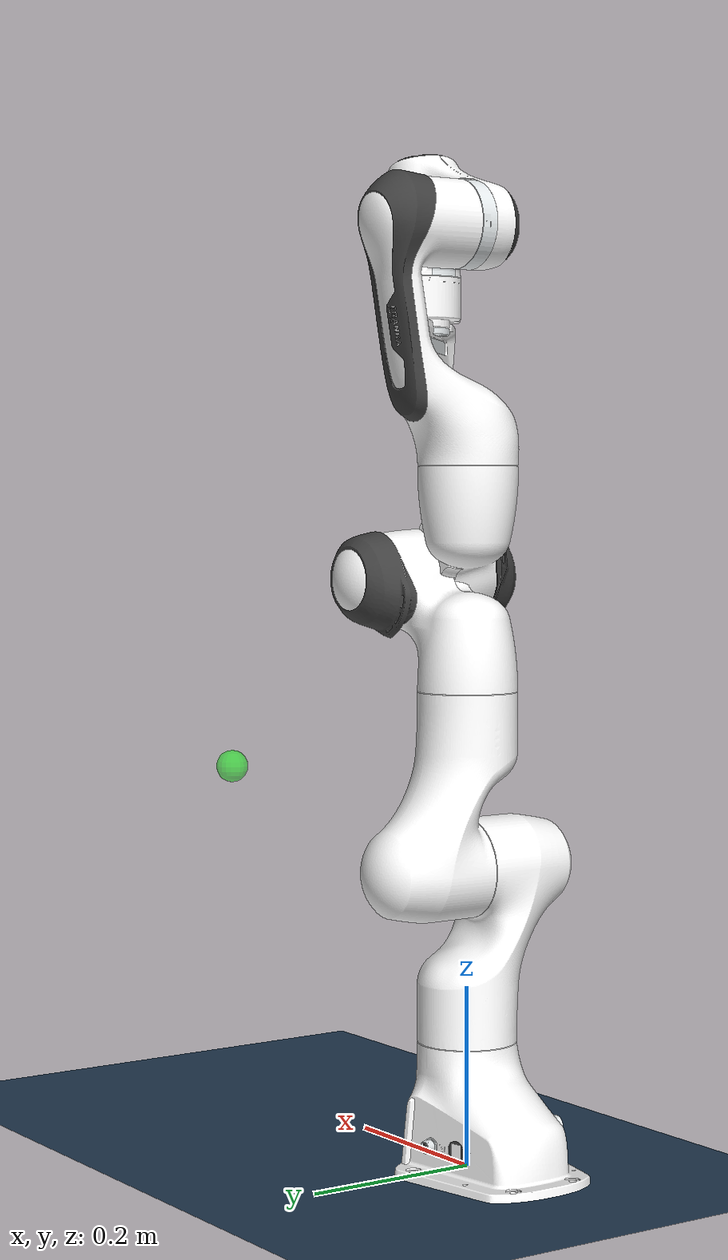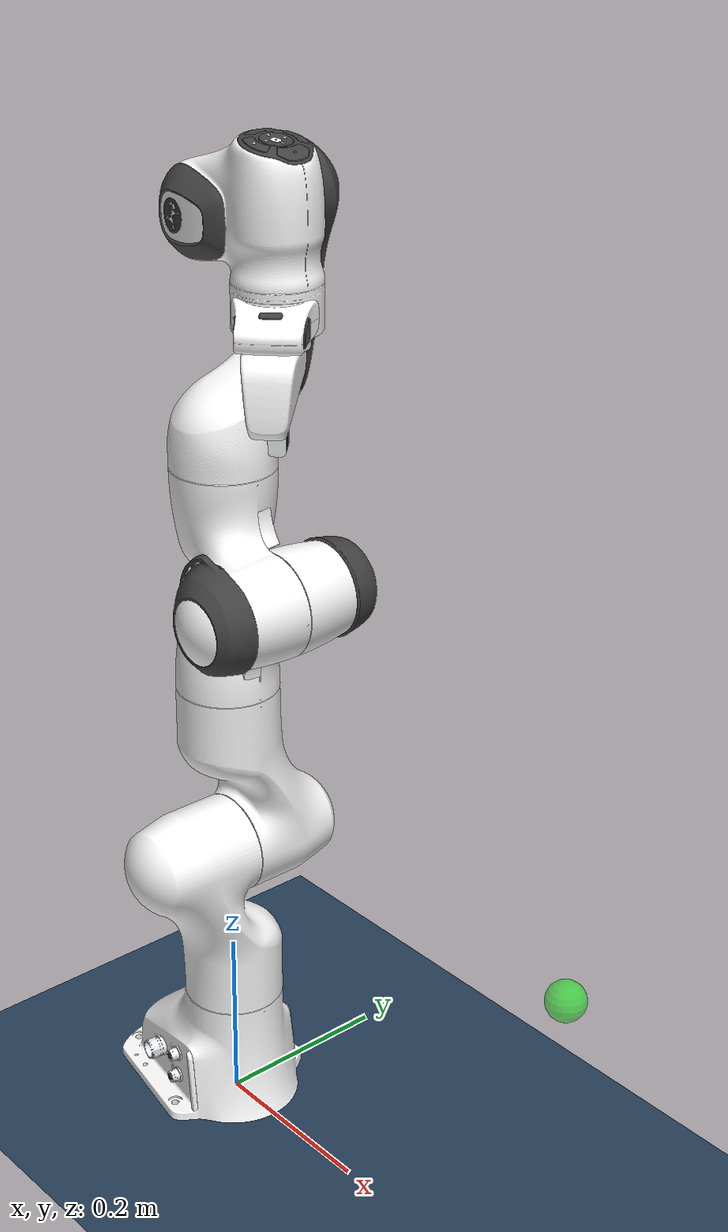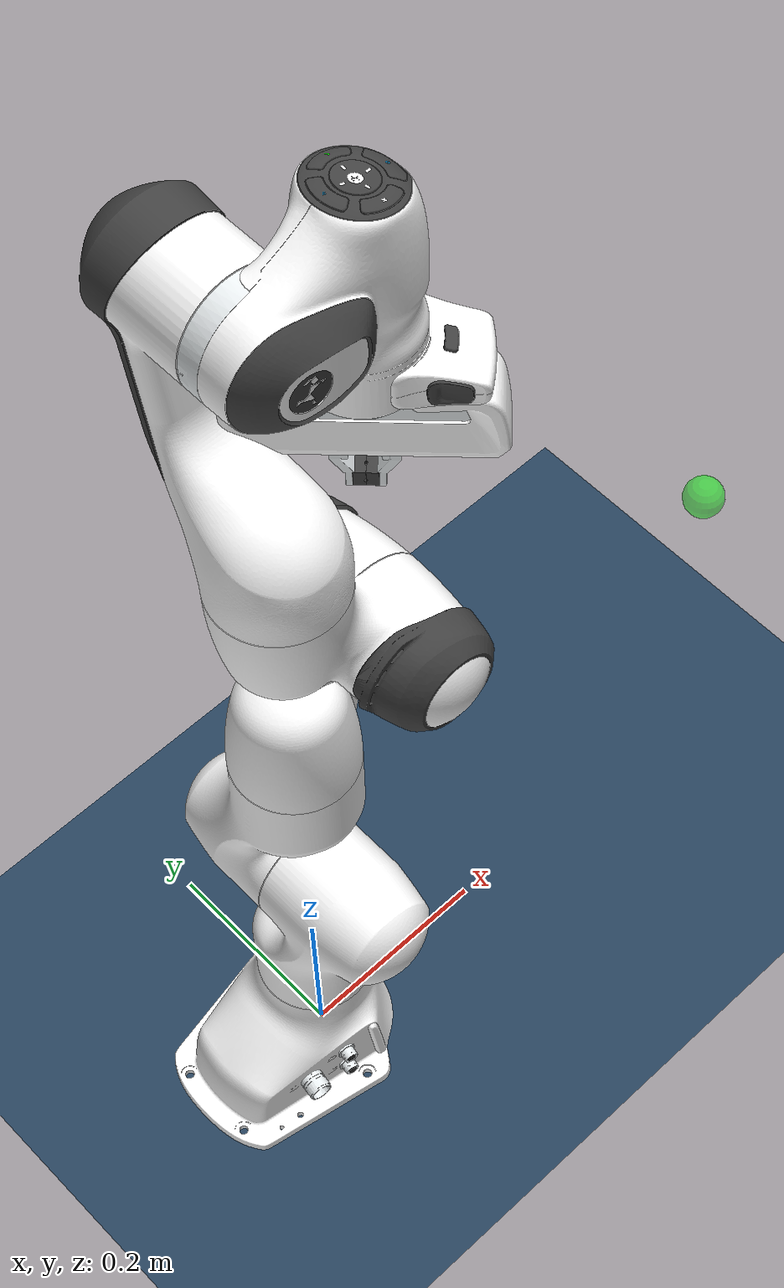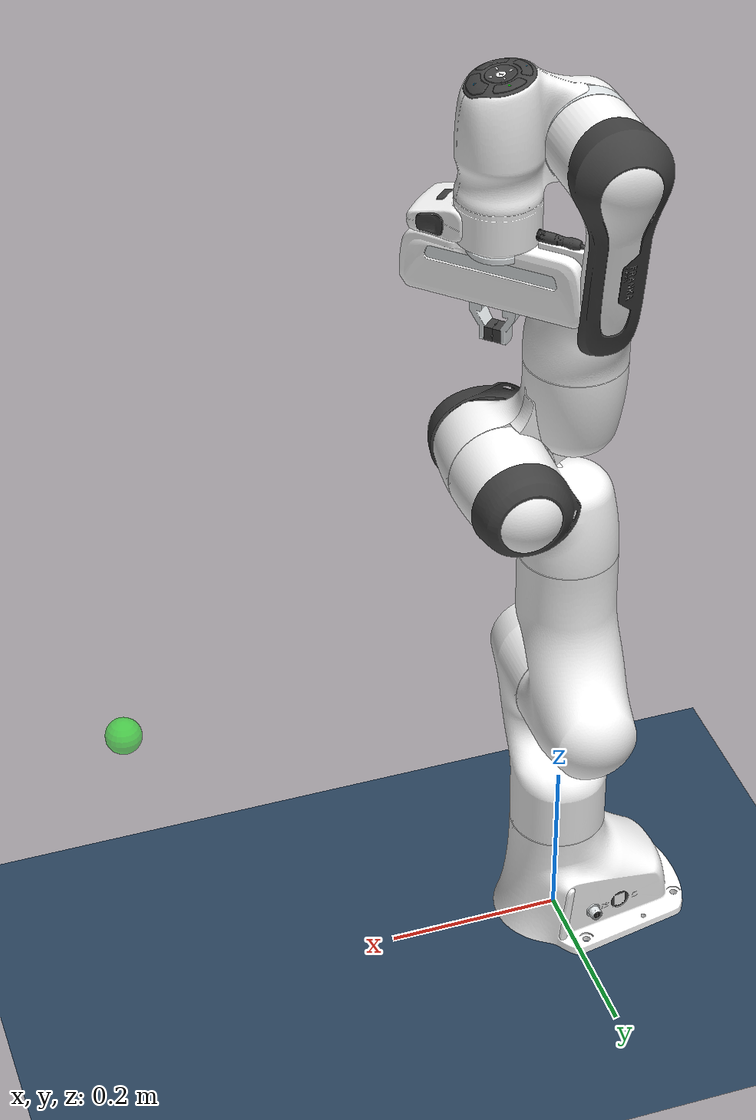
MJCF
<mujoco model="panda scene">
  <include file="mjx_panda_cartesian_no_contact.xml"/>

  <statistic center="0.3 0 0.4" extent="1"/>

  <option timestep="0.01" iterations="1" ls_iterations="5" integrator="implicitfast">
    <flag eulerdamp="disable"/>
  </option>

  <custom>
    <numeric data="0" name="max_contact_points"/>
    <numeric data="0" name="max_geom_pairs"/>
  </custom>

  <visual>
    <headlight diffuse="0.6 0.6 0.6" ambient="0.3 0.3 0.3" specular="0 0 0"/>
    <rgba haze="0.15 0.25 0.35 1"/>
    <global azimuth="120" elevation="-20" offwidth="640" offheight="480"/>
    <scale contactwidth="0.075" contactheight="0.025" forcewidth="0.05" com="0.05" framewidth="0.01" framelength="0.2"/>
  </visual>

  <asset>
    <texture type="skybox" builtin="gradient" rgb1="0.3 0.5 0.7" rgb2="0 0 0" width="512" height="3072"/>
    <texture type="2d" name="groundplane" builtin="checker" mark="edge" rgb1="0.2 0.3 0.4" rgb2="0.1 0.2 0.3"
      markrgb="0.8 0.8 0.8" width="300" height="300"/>
    <material name="groundplane" texture="groundplane" texuniform="true" texrepeat="5 5" reflectance="0.2"/>
    <material name="table" rgba="0.7 0.7 0.7 1"/>
    <material name="box" rgba="0.8 0.2 0.2 1"/>
  </asset>

  <worldbody>
    <light pos="0 0 1.5" dir="0 0 -1" directional="true"/>
    <geom name="floor" size="0 0 0.05" type="plane" material="groundplane" contype="1"/>

    <!-- Replace static goal site with mocap body -->
    <body name="goal" mocap="true" pos="0.5 0.0 0.4" quat="0 -1 0 0">
      <geom type="sphere" size=".02" contype="0" conaffinity="0" rgba="0 1 0 .5" />
    </body>
  </worldbody>
</mujoco>

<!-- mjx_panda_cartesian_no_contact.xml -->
<mujoco model="panda">
  <compiler angle="radian" meshdir="assets" autolimits="true"/>

  <default>
    <default class="panda">
      <material specular="0.5" shininess="0.25"/>
      <joint armature="0.1" damping="1" axis="0 0 1" range="-2.8973 2.8973"/>
      <general dyntype="none" biastype="affine" ctrlrange="-2.8973 2.8973" forcerange="-87 87"/>
      <position forcerange="-100 100"/>
      <default class="finger">
        <joint axis="0 1 0" type="slide" range="0 1e-6"/>
      </default>

      <default class="visual">
        <geom type="mesh" contype="0" conaffinity="0" group="2"/>
      </default>
    </default>
  </default>

  <default>
    <default class="translation">
      <position kp="200" kv="100" ctrlrange="-1 1"/>
    </default>
    <default class="rotation">
      <position kp="30" kv="20" ctrlrange="-3.14 3.14"/>
    </default>
    <site type="box" size=".012 .012 .012" rgba=".7 .7 .8 1"/>
    <joint armature="0.2" damping="2" stiffness="0" actuatorfrcrange="-1 1" actuatorgravcomp="true"/>
  </default>

  <asset>
    <material class="panda" name="white" rgba="1 1 1 1"/>
    <material class="panda" name="off_white" rgba="0.901961 0.921569 0.929412 1"/>
    <material class="panda" name="black" rgba="0.25 0.25 0.25 1"/>
    <material class="panda" name="green" rgba="0 1 0 1"/>
    <material class="panda" name="light_blue" rgba="0.039216 0.541176 0.780392 1"/>

    <!-- Visual meshes -->
    <mesh file="link0_0.obj"/>
    <mesh file="link0_1.obj"/>
    <mesh file="link0_2.obj"/>
    <mesh file="link0_3.obj"/>
    <mesh file="link0_4.obj"/>
    <mesh file="link0_5.obj"/>
    <mesh file="link0_7.obj"/>
    <mesh file="link0_8.obj"/>
    <mesh file="link0_9.obj"/>
    <mesh file="link0_10.obj"/>
    <mesh file="link0_11.obj"/>
    <mesh file="link1.obj"/>
    <mesh file="link2.obj"/>
    <mesh file="link3_0.obj"/>
    <mesh file="link3_1.obj"/>
    <mesh file="link3_2.obj"/>
    <mesh file="link3_3.obj"/>
    <mesh file="link4_0.obj"/>
    <mesh file="link4_1.obj"/>
    <mesh file="link4_2.obj"/>
    <mesh file="link4_3.obj"/>
    <mesh file="link5_0.obj"/>
    <mesh file="link5_1.obj"/>
    <mesh file="link5_2.obj"/>
    <mesh file="link6_0.obj"/>
    <mesh file="link6_1.obj"/>
    <mesh file="link6_2.obj"/>
    <mesh file="link6_3.obj"/>
    <mesh file="link6_4.obj"/>
    <mesh file="link6_5.obj"/>
    <mesh file="link6_6.obj"/>
    <mesh file="link6_7.obj"/>
    <mesh file="link6_8.obj"/>
    <mesh file="link6_9.obj"/>
    <mesh file="link6_10.obj"/>
    <mesh file="link6_11.obj"/>
    <mesh file="link6_12.obj"/>
    <mesh file="link6_13.obj"/>
    <mesh file="link6_14.obj"/>
    <mesh file="link6_15.obj"/>
    <mesh file="link6_16.obj"/>
    <mesh file="link7_0.obj"/>
    <mesh file="link7_1.obj"/>
    <mesh file="link7_2.obj"/>
    <mesh file="link7_3.obj"/>
    <mesh file="link7_4.obj"/>
    <mesh file="link7_5.obj"/>
    <mesh file="link7_6.obj"/>
    <mesh file="link7_7.obj"/>
    <mesh file="hand_0.obj"/>
    <mesh file="hand_1.obj"/>
    <mesh file="hand_2.obj"/>
    <mesh file="hand_3.obj"/>
    <mesh file="hand_4.obj"/>
    <mesh file="finger_0.obj"/>
    <mesh file="finger_1.obj"/>
  </asset>

  <worldbody>
    <light name="top" pos="0 0 2" mode="trackcom"/>
    <site name="reference" pos="0.0 0.0 0.0" 	euler="0 0 0.0" size="0.01" rgba="1 0 0 0"/>
    <body name="link0" childclass="panda" gravcomp="1">
      <inertial mass="0.629769" pos="-0.041018 -0.00014 0.049974"
        fullinertia="0.00315 0.00388 0.004285 8.2904e-7 0.00015 8.2299e-6"/>
      <geom mesh="link0_0" material="off_white" class="visual"/>
      <geom mesh="link0_1" material="black" class="visual"/>
      <geom mesh="link0_2" material="off_white" class="visual"/>
      <geom mesh="link0_3" material="black" class="visual"/>
      <geom mesh="link0_4" material="off_white" class="visual"/>
      <geom mesh="link0_5" material="black" class="visual"/>
      <geom mesh="link0_7" material="white" class="visual"/>
      <geom mesh="link0_8" material="white" class="visual"/>
      <geom mesh="link0_9" material="black" class="visual"/>
      <geom mesh="link0_10" material="off_white" class="visual"/>
      <geom mesh="link0_11" material="white" class="visual"/>
      <body name="link1" pos="0 0 0.333" gravcomp="1">
        <inertial mass="4.970684" pos="0.003875 0.002081 -0.04762"
          fullinertia="0.70337 0.70661 0.0091170 -0.00013900 0.0067720 0.019169"/>
        <joint name="joint1" range="-2.8973 2.8973"/>
        <geom material="white" mesh="link1" class="visual"/>
        <body name="link2" quat="1 -1 0 0" gravcomp="1">
          <inertial mass="0.646926" pos="-0.003141 -0.02872 0.003495"
            fullinertia="0.0079620 2.8110e-2 2.5995e-2 -3.925e-3 1.0254e-2 7.04e-4"/>
          <joint name="joint2" range="-1.7628 1.7628"/>
          <geom material="white" mesh="link2" class="visual"/>
          <body name="link3" pos="0 -0.316 0" quat="1 1 0 0" gravcomp="1">
            <joint name="joint3" range="-2.8973 2.8973"/>
            <inertial mass="3.228604" pos="2.7518e-2 3.9252e-2 -6.6502e-2"
              fullinertia="3.7242e-2 3.6155e-2 1.083e-2 -4.761e-3 -1.1396e-2 -1.2805e-2"/>
            <geom mesh="link3_0" material="white" class="visual"/>
            <geom mesh="link3_1" material="white" class="visual"/>
            <geom mesh="link3_2" material="white" class="visual"/>
            <geom mesh="link3_3" material="black" class="visual"/>
            <body name="link4" pos="0.0825 0 0" quat="1 1 0 0" gravcomp="1">
              <inertial mass="3.587895" pos="-5.317e-2 1.04419e-1 2.7454e-2"
                fullinertia="2.5853e-2 1.9552e-2 2.8323e-2 7.796e-3 -1.332e-3 8.641e-3"/>
              <joint name="joint4" range="-3.0718 -0.0698" />
              <geom mesh="link4_0" material="white" class="visual"/>
              <geom mesh="link4_1" material="white" class="visual"/>
              <geom mesh="link4_2" material="black" class="visual"/>
              <geom mesh="link4_3" material="white" class="visual"/>
              <body name="link5" pos="-0.0825 0.384 0" quat="1 -1 0 0" gravcomp="1">
                <inertial mass="1.225946" pos="-1.1953e-2 4.1065e-2 -3.8437e-2"
                  fullinertia="3.5549e-2 2.9474e-2 8.627e-3 -2.117e-3 -4.037e-3 2.29e-4"/>
                <joint name="joint5" range="-2.8973 2.8973"/>
                <geom mesh="link5_0" material="black" class="visual"/>
                <geom mesh="link5_1" material="white" class="visual"/>
                <geom mesh="link5_2" material="white" class="visual"/>
                <body name="link6" quat="1 1 0 0" gravcomp="1">
                  <inertial mass="1.666555" pos="6.0149e-2 -1.4117e-2 -1.0517e-2"
                    fullinertia="1.964e-3 4.354e-3 5.433e-3 1.09e-4 -1.158e-3 3.41e-4"/>
                  <joint name="joint6" range="-0.0175 3.7525" />
                  <geom mesh="link6_0" material="off_white" class="visual"/>
                  <geom mesh="link6_1" material="white" class="visual"/>
                  <geom mesh="link6_2" material="black" class="visual"/>
                  <geom mesh="link6_3" material="white" class="visual"/>
                  <geom mesh="link6_4" material="white" class="visual"/>
                  <geom mesh="link6_5" material="white" class="visual"/>
                  <geom mesh="link6_6" material="white" class="visual"/>
                  <geom mesh="link6_7" material="light_blue" class="visual"/>
                  <geom mesh="link6_8" material="light_blue" class="visual"/>
                  <geom mesh="link6_9" material="black" class="visual"/>
                  <geom mesh="link6_10" material="black" class="visual"/>
                  <geom mesh="link6_11" material="white" class="visual"/>
                  <geom mesh="link6_12" material="green" class="visual"/>
                  <geom mesh="link6_13" material="white" class="visual"/>
                  <geom mesh="link6_14" material="black" class="visual"/>
                  <geom mesh="link6_15" material="black" class="visual"/>
                  <geom mesh="link6_16" material="white" class="visual"/>
                  <body name="link7" pos="0.088 0 0" quat="1 1 0 0" gravcomp="1">
                    <inertial mass="7.35522e-01" pos="1.0517e-2 -4.252e-3 6.1597e-2"
                      fullinertia="1.2516e-2 1.0027e-2 4.815e-3 -4.28e-4 -1.196e-3 -7.41e-4"/>
                    <joint name="joint7" range="-2.8973 2.8973"/>
                    <geom mesh="link7_0" material="white" class="visual"/>
                    <geom mesh="link7_1" material="black" class="visual"/>
                    <geom mesh="link7_2" material="black" class="visual"/>
                    <geom mesh="link7_3" material="black" class="visual"/>
                    <geom mesh="link7_4" material="black" class="visual"/>
                    <geom mesh="link7_5" material="black" class="visual"/>
                    <geom mesh="link7_6" material="black" class="visual"/>
                    <geom mesh="link7_7" material="white" class="visual"/>
                    <body name="hand" pos="0 0 0.107" quat="0.9238795 0 0 -0.3826834" gravcomp="1">
                      <inertial mass="0.73" pos="-0.01 0 0.03" diaginertia="0.001 0.0025 0.0017"/>
                      <geom mesh="hand_0" material="off_white" class="visual"/>
                      <geom mesh="hand_1" material="black" class="visual"/>
                      <geom mesh="hand_2" material="black" class="visual"/>
                      <geom mesh="hand_3" material="white" class="visual"/>
                      <geom mesh="hand_4" material="off_white" class="visual"/>
                      <site name="gripper" pos="0 0 0.1034"/>
                      <body name="left_finger" pos="0 0 0.0584" gravcomp="1">
                        <inertial mass="0.015" pos="0 0 0" diaginertia="2.375e-6 2.375e-6 7.5e-7"/>
                        <joint name="finger_joint1" class="finger" />
                        <geom mesh="finger_0" material="off_white" class="visual"/>
                        <geom mesh="finger_1" material="black" class="visual"/>
                      </body>
                      <body name="right_finger" pos="0 0 0.0584" quat="0 0 0 1" gravcomp="1">
                        <inertial mass="0.015" pos="0 0 0" diaginertia="2.375e-6 2.375e-6 7.5e-7"/>
                        <joint name="finger_joint2" class="finger" />
                        <geom mesh="finger_0" material="off_white" class="visual"/>
                        <geom mesh="finger_1" material="black" class="visual"/>
                      </body>
                    </body>
                  </body>
                </body>
              </body>
            </body>
          </body>
        </body>
      </body>
    </body>
  </worldbody>

  <equality>
    <joint joint1="finger_joint1" joint2="finger_joint2" solimp="0.95 0.99 0.001" solref="0.005 1"/>
  </equality>

  <actuator>
    <position name="x"  site="gripper" refsite="reference" gear="1 0 0 0 0 0" class="translation"/>
    <position name="y"  site="gripper" refsite="reference" gear="0 1 0 0 0 0" class="translation"/>
    <position name="z"  site="gripper" refsite="reference" gear="0 0 1 0 0 0" class="translation"/>
    <position name="rx" site="gripper" refsite="reference" gear="0 0 0 1 0 0" class="rotation"/>
    <position name="ry" site="gripper" refsite="reference" gear="0 0 0 0 1 0" class="rotation"/>
    <position name="rz" site="gripper" refsite="reference" gear="0 0 0 0 0 1" class="rotation"/>

  </actuator>

    <!-- Sensors for the gripper -->
  <sensor>
    <framepos name="gripper_position" objtype="site" objname="gripper" reftype="site" refname="reference" />
    <framequat name="gripper_orientation" objtype="site" objname="gripper" reftype="site" refname="reference"/>
  </sensor>

  <keyframe>
    <key name="home" qpos="-0.196 -0.189 0.182 -2.1 0.0378 1.91 0.756 0 0" ctrl="0.5 0 0.5 -3.14  0 0"/>
  </keyframe>
</mujoco>
